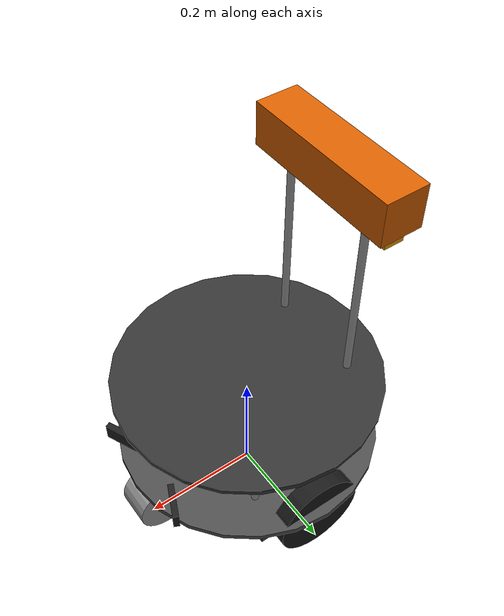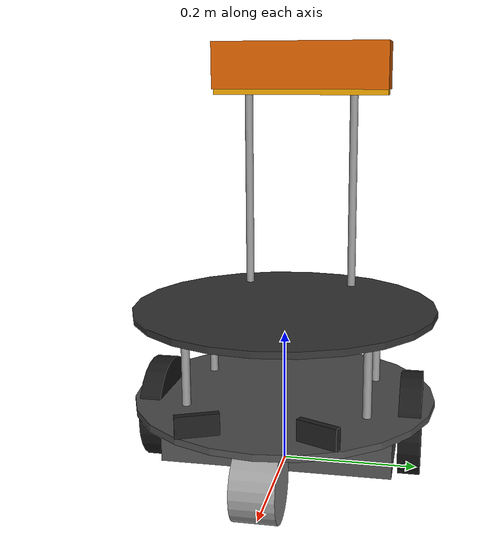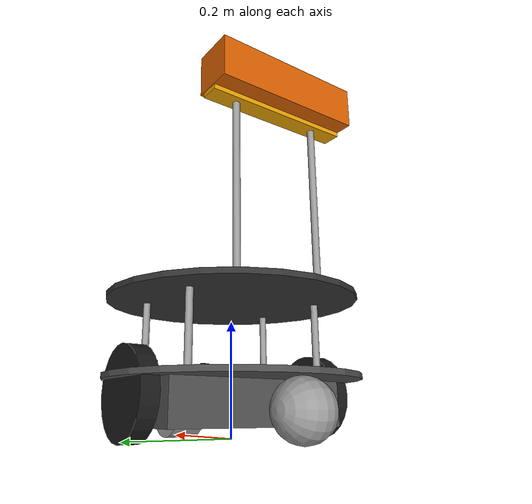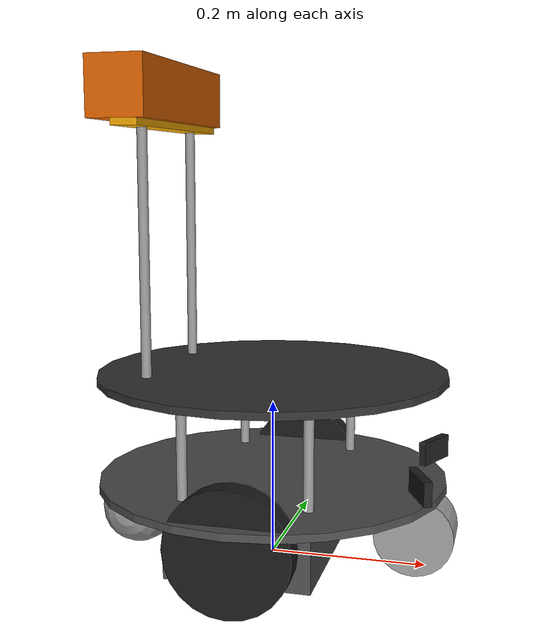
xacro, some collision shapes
<?xml version="1.0"?>
<robot name="eddiebot" xmlns:xacro="http://ros.org/wiki/xacro">

  <xacro:include filename="$(find eddiebot_description)/urdf/stacks/create_base.urdf.xacro"/>
  <xacro:include filename="$(find eddiebot_description)/urdf/stacks/circle_stack.urdf.xacro"/>
  <xacro:include filename="$(find eddiebot_description)/urdf/stacks/camera_stand.urdf.xacro"/>
  <xacro:include filename="$(find eddiebot_description)/urdf/sensors/kinect_v1.urdf.xacro"/>
  <!-- smh   -->
  <xacro:include filename="$(find eddiebot_description)/urdf/sensors/ultrasonic_sensor.urdf.xacro"/>

  <!-- eddiebot -->
  <xacro:create_base/>
  <xacro:circle_stack parent="base_link"/>
  <xacro:camera_stand parent="plate_0_link"/>
  <xacro:sensor_kinect parent="camera_mount_link"/>

</robot>

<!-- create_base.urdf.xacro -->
<robot name="eddiebot_create_base" xmlns:xacro="http://ros.org/wiki/xacro">

  <xacro:include filename="$(find eddiebot_description)/urdf/common.urdf.xacro"/>

  <xacro:include filename="$(find eddiebot_description)/urdf/sensors/ultrasonic_sensor.urdf.xacro"/>

  <!-- Define robot constants -->
  <xacro:property name="base_length" value="0.0095"/>
  <xacro:property name="base_radius" value="0.2245"/>
  <xacro:property name="base_mass" value="2"/>
  <xacro:property name="base_link_z_offset" value="0.10125"/>

  <xacro:property name="battery_box_z_offset" value="-0.04285"/>
  <xacro:property name="battery_box_width" value="0.3366"/>

  <xacro:property name="caster_mass" value="0.5"/>
  <xacro:property name="caster_radius" value="0.05"/>
  <xacro:property name="caster_length" value="0.061"/>
  <xacro:property name="caster_x_offset" value="0.18745"/>
  <xacro:property name="caster_z_offset" value="-0.00475"/>

  <xacro:property name="axle_radius" value="0.00635"/>
  <xacro:property name="axle_length" value="0.00635"/>
  <xacro:property name="axle_y_offset" value="0.171475"/>
  <xacro:property name="axle_z_offset" value="0.014"/>

  <xacro:property name="wheel_mass" value="0.8"/>
  <xacro:property name="wheel_radius" value="0.0762"/>
  <xacro:property name="wheel_width" value="0.03175"/>
  <xacro:property name="wheel_y_offset" value="0.01905"/>

  <xacro:macro name="create_base">

    <!-- base_footprint is a fictitious link(frame) that is on the ground right below base_link origin, navigation stack depends on this frame -->
    <link name="base_footprint">
    </link>
    <joint name="base_footprint_joint" type="fixed">
      <origin xyz="0 0 ${base_link_z_offset}" rpy="0 0 0" />
      <parent link="base_footprint"/>
      <child link="base_link" />
    </joint>

    <link name="base_link">
      <xacro:inertial_cylinder mass="${base_mass}" length="${base_length}" radius="${base_radius}"/>
      <visual>
        <origin xyz="0 0 0" rpy="0 0 0" />
        <geometry>
          <cylinder length="${base_length}" radius="${base_radius}"/>
        </geometry>
        <material name ="material_darkgray" />
      </visual>
      <collision>
        <origin xyz="0 0 0" rpy="0 0 0" />
        <geometry>
          <cylinder length="${base_length}" radius="${base_radius}"/>
        </geometry>
      </collision>
    </link>

    <link name="battery_box">
      <xacro:inertial_cuboid mass="1" x="0.1778" y="${battery_box_width}" z="0.0762"/>
      <visual>
        <origin xyz="0 0 0" rpy="0 0 0" />
        <geometry>
          <box size="0.1778 ${battery_box_width} 0.0762" />
        </geometry>
        <material name ="material_darkgray" />
      </visual>
      <collision>
        <origin xyz="0 0 0" rpy="0 0 0" />
        <geometry>
          <box size="0.1778 ${battery_box_width} 0.0762" />
        </geometry>
      </collision>
    </link>

    <joint name="battery_box_joint" type="fixed">
      <origin xyz="0 0 ${battery_box_z_offset}" rpy="0 0 0" />
      <parent link="base_link" />
      <child link="battery_box" />
    </joint>

    <link name="front_caster">
      <xacro:inertial_cylinder mass="${caster_mass}" length="${caster_length}" radius="${caster_radius}" />
      <visual>
        <origin xyz="0 0 0" rpy="-${M_PI/2} 0 ${M_PI/2}" />
        <geometry>
          <mesh filename="package://eddiebot_description/meshes/28971-Caster-Wheel-Kit-v1.0.stl"/>
        </geometry>
        <material name ="material_lightgray">
          <color rgba="0.6 0.6 0.6 1"/>
        </material>
      </visual>
      <collision>
        <geometry>
          <cylinder length="${caster_length}" radius="${caster_radius}"/>
        </geometry>
        <origin rpy="${M_PI/2} 0 0" xyz="0 0 -${caster_radius}"/>
      </collision>
    </link>
    <gazebo reference="front_caster">
      <mu1 value="0.0"/>
      <mu2 value="0.0"/>
      <kp value="10000000.0"/>
      <kd value="1.0"/>
      <fdir1 value="1 0 0"/>
      <turnGravityOff>false</turnGravityOff>
    </gazebo>

    <joint name="front_caster_joint" type="fixed">
      <origin xyz="${caster_x_offset} 0 ${caster_z_offset}" rpy="0 0 0" />
      <parent link="base_link" />
      <child link="front_caster" />
    </joint>

    <link name="rear_caster">
      <xacro:inertial_cylinder mass="${caster_mass}" length="${caster_length}" radius="${caster_radius}" />
      <visual>
        <origin xyz="0 0 0" rpy="-${M_PI/2} 0 ${M_PI/2}" />
        <geometry>
          <mesh filename="package://eddiebot_description/meshes/28971-Caster-Wheel-Kit-v1.0.stl"/>
        </geometry>
        <material name ="material_lightgray">
          <color rgba="0.6 0.6 0.6 1"/>
        </material>
      </visual>
      <collision>
        <geometry>
          <sphere radius="${caster_radius}"/>
        </geometry>
        <origin rpy="${M_PI/2} 0 0" xyz="0 0 -${caster_radius}"/>
      </collision>
    </link>
    <gazebo reference="rear_caster">
      <mu1 value="0.0"/>
      <mu2 value="0.0"/>
      <kp value="10000000.0"/>
      <kd value="1.0"/>
      <fdir1 value="1 0 0"/>
      <turnGravityOff>false</turnGravityOff>
    </gazebo>

    <joint name="rear_caster_joint" type="fixed">
      <origin xyz="${-caster_x_offset} 0 ${caster_z_offset}" rpy="0 0 0" />
      <parent link="base_link" />
      <child link="rear_caster" />
    </joint>

    <link name="left_axle_link">
      <xacro:inertial_dummy />
      <visual>
        <origin xyz="0 0 0" rpy="0 ${M_PI/2} ${M_PI/2}" />
        <geometry>
          <cylinder radius="${axle_radius}" length = "${axle_length}"/>
        </geometry>
        <material name ="material_lightgray" />
      </visual>
      <collision>
        <origin xyz="0 0 0" rpy="0 ${M_PI/2} ${M_PI/2}" />
        <geometry>
          <cylinder radius="${axle_radius}" length = "${axle_length}"/>
        </geometry>
      </collision>
    </link>

    <joint name="left_axle_joint" type="fixed">
      <origin xyz="0 ${axle_y_offset} ${axle_z_offset}" rpy="0 0 0"/>
      <parent link="battery_box"/>
      <child link="left_axle_link"/>
      <axis xyz="0 1 0"/>
    </joint>

    <link name="right_axle_link">
      <xacro:inertial_dummy />
      <visual>
        <origin xyz="0 0 0" rpy="0 ${M_PI/2} ${M_PI/2}" />
        <geometry>
          <cylinder radius="${axle_radius}" length = "${axle_length}"/>
        </geometry>
        <material name ="material_lightgray" />
      </visual>
      <collision>
        <origin xyz="0 0 0" rpy="0 ${M_PI/2} ${M_PI/2}" />
        <geometry>
          <cylinder radius="${axle_radius}" length = "${axle_length}"/>
        </geometry>
      </collision>
    </link>

    <joint name="right_axle_joint" type="fixed">
      <origin xyz="0 ${-axle_y_offset} ${axle_z_offset}" rpy="0 0 0"/>
      <parent link="battery_box"/>
      <child link="right_axle_link"/>
      <axis xyz="0 1 0"/>
    </joint>

    <link name="left_wheel_link">
      <xacro:inertial_cylinder mass="${wheel_mass}" radius="${wheel_radius}" length="${wheel_width}" />
      <visual>
        <origin xyz="0 0 0" rpy="${M_PI/2} 0 0" />
        <geometry>
          <cylinder radius="${wheel_radius}" length = "${wheel_width}"/>
        </geometry>
        <material name ="material_black" />
      </visual>
      <collision>
        <origin xyz="0 0 0" rpy="${M_PI/2} 0 0" />
        <geometry>
          <cylinder radius="${wheel_radius}" length = "${wheel_width}"/>
        </geometry>
      </collision>
    </link>

    <joint name="left_wheel_joint" type="continuous">
      <origin xyz="0 ${wheel_y_offset} 0" rpy="0 0 0"/>
      <parent link="left_axle_link"/>
      <child link="left_wheel_link"/>
      <axis xyz="0 1 0"/>
    </joint>

    <link name="right_wheel_link">
      <xacro:inertial_cylinder mass="${wheel_mass}" radius="${wheel_radius}" length="${wheel_width}" />
      <visual>
        <origin xyz="0 0 0" rpy="${M_PI/2} 0 0" />
        <geometry>
          <cylinder radius="${wheel_radius}" length = "${wheel_width}"/>
        </geometry>
        <material name ="material_black" />
      </visual>
      <collision>
        <origin xyz="0 0 0" rpy="${M_PI/2} 0 0" />
        <geometry>
          <cylinder radius="${wheel_radius}" length = "${wheel_width}"/>
        </geometry>
      </collision>
    </link>

    <joint name="right_wheel_joint" type="continuous">
      <origin xyz="0 -${wheel_y_offset} 0" rpy="0 0 0"/>
      <parent link="right_axle_link"/>
      <child link="right_wheel_link"/>
      <axis xyz="0 1 0"/>
    </joint>

    <!-- Diff Drive -->
    <gazebo>
      <plugin filename="gz-sim-diff-drive-system" name="gz::sim::systems::DiffDrive">
        <left_joint>left_wheel_joint</left_joint>
        <right_joint>right_wheel_joint</right_joint>
        <wheel_separation>${wheel_y_offset*2 + battery_box_width}</wheel_separation>
        <wheel_radius>${wheel_radius}</wheel_radius>
        <odom_publish_frequency>1</odom_publish_frequency>
        <topic>cmd_vel</topic>
      </plugin>
      <plugin filename="gz-sim-joint-state-publisher-system" name="gz::sim::systems::JointStatePublisher">
        <joint_name>left_wheel_joint</joint_name>
        <joint_name>right_wheel_joint</joint_name>
        <topic>model/eddiebot/joint_states</topic>
      </plugin>
    </gazebo>

    <xacro:ultrasonic_sensor_sim name="ultrasonic_l" parent="base_link" topic="ultrasonic_l" x="0.2" y="0.08" z="0.028" roll="0.000" pitch="0.000" yaw="20" linkname="ultrasonic_link_l" jointname="ultrasonic_joint_l"/>
    <xacro:ultrasonic_sensor_sim name="ultrasonic_r" parent="base_link" topic="ultrasonic_r" x="0.2" y="-0.08" z="0.028" roll="0.000" pitch="0.000" yaw="-20" linkname="ultrasonic_link_r" jointname="ultrasonic_joint_r"/>

  </xacro:macro>

</robot>

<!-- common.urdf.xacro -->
<!-- Various useful macros -->
<robot name="xacro_properties" xmlns:xacro="http://ros.org/wiki/xacro">

  <!-- Constants -->
  <xacro:property name="M_PI" value="3.1415926535897931" />

  <xacro:macro name="inertial_cuboid_with_pose" params="mass x y z *origin">
    <inertial>
      <mass value="${mass}" />
      <xacro:insert_block name="origin"/>
      <inertia ixx="${(1/12) * mass * (y*y + z*z)}" ixy="0.0" ixz="0.0"
        iyy="${(1/12) * mass * (x*x + z*z)}" iyz="0.0"
        izz="${(1/12) * mass * (x*x + y*y)}" />
    </inertial>
  </xacro:macro>

  <xacro:macro name="inertial_cuboid" params="mass x y z">
    <xacro:inertial_cuboid_with_pose mass="${mass}" x="${x}" y="${y}" z="${z}">
      <origin xyz="0 0 0" />
    </xacro:inertial_cuboid_with_pose>
  </xacro:macro>

  <xacro:macro name="inertial_cylinder_with_pose" params="mass radius length *origin">
    <inertial>
      <xacro:insert_block name="origin"/>
      <mass value="${mass}" />
      <inertia ixx="${(1/12) * mass * (3*radius*radius + length*length)}" ixy="0.0" ixz="0.0"
        iyy="${(1/12) * mass * (3*radius*radius + length*length)}" iyz="0.0"
        izz="${(1/2) * mass * (radius*radius)}" />
    </inertial>
  </xacro:macro>

  <xacro:macro name="inertial_cylinder" params="mass radius length">
    <xacro:inertial_cylinder_with_pose mass="${mass}" radius="${radius}" length="${length}">
      <origin xyz="0 0 0" />
    </xacro:inertial_cylinder_with_pose>
  </xacro:macro>

  <xacro:macro name="inertial_sphere" params="mass radius">
    <inertial>
      <mass value="${mass}" />
      <inertia ixx="${(2/5) * mass * radius * radius}" ixy="0.0" ixz="0.0"
	             iyy="${(2/5) * mass * radius * radius}" iyz="0.0"
	             izz="${(2/5) * mass * radius * radius}" />
    </inertial>
  </xacro:macro>

  <xacro:macro name="inertial_dummy">
    <xacro:inertial_cuboid mass="0.001" x="0.001" y="0.001" z="0.001"/>
  </xacro:macro>

  <!-- Conversion macros -->
  <xacro:property name="cm2m"    value="${1/100.0}"/>
  <xacro:property name="mm2m"    value="${1/1000.0}"/>
  <xacro:property name="in2m"    value="0.0254"/>
  <xacro:property name="deg2rad" value="${pi/180.0}"/>

  <!-- Material colors -->
  <material name="material_black">
    <color rgba="0.1 0.1 0.1 1"/>
  </material>

  <material name="material_darkgray">
    <color rgba="0.3 0.3 0.3 1"/>
  </material>

  <material name="sensor_blue">
    <color rgba="0.1 0.2 0.8 1"/>
  </material>

  <material name="material_lightgray">
    <color rgba="0.5 0.5 0.5 1"/>
  </material>

</robot>

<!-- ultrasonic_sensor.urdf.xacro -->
<robot name="ultrasonic_sensor" xmlns:xacro="http://ros.org/wiki/xacro">

    <xacro:property name="length" value="0.06"/>
    <xacro:property name="width" value="0.01" />
    <xacro:property name="height" value="0.03" />

    <xacro:macro name="ultrasonic_sensor_sim" params="name parent topic x y z roll pitch yaw linkname jointname">

         <link name="${linkname}">
            <xacro:inertial_cuboid mass="1" x="${length}" y="${width}" z="${height}"/>
            <visual>
                <origin xyz="0 0 0" rpy="0 0 0" />
                <geometry>
                    <box size="${length} ${width} ${height}" />
                </geometry>
                <material name ="black" />
            </visual>
            <collision>
                <origin xyz="0 0 0" rpy="0 0 0" />
                <geometry>
                    <box size="${length} ${width} ${height}" />
                </geometry>
            </collision>
        </link>

        <joint name="${jointname}" type="fixed">
            <origin xyz="${x} ${y} ${z}" rpy="${roll} ${pitch} ${yaw}" />
            <parent link="${parent}" />
            <child link="${linkname}" />
        </joint>

        <gazebo reference="${linkname}">
            <sensor name="${name}" type="gpu_lidar">
                <always_on>1</always_on>
                <update_rate>5</update_rate>
                <visualize>1</visualize>
                <topic>${topic}</topic>
                <ray>
                    <scan>
                        <horizontal>
                            <samples>640</samples>
                            <resolution>1</resolution>
                            <min_angle>-1.396263</min_angle>
                            <max_angle>1.396263</max_angle>
                        </horizontal>
                    </scan>
                    <range>
                        <min>0.08</min>
                        <max>4</max>
                        <resolution>0.02</resolution>
                    </range>
                    <noise>
                        <type>gaussian</type>
                        <mean>0.1</mean>
                        <stddev>0.005</stddev>
                    </noise>
                </ray>
            </sensor>
        </gazebo>
    </xacro:macro>
</robot>

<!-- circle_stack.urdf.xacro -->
<robot name="eddiebot_hardware" xmlns:xacro="http://ros.org/wiki/xacro">

  <!-- Macro for creating eddiebot circle stack. -->
  <xacro:macro name="eddiebot_standoff_5in" params="parent number x_loc y_loc z_loc">
    <joint name="standoff_5in_${number}_joint" type="fixed">
      <origin xyz="${x_loc} ${y_loc} ${z_loc}" rpy="0 0 0" />
      <parent link="${parent}"/>
      <child link="standoff_5in_${number}_link" />
    </joint>

    <link name="standoff_5in_${number}_link">
      <inertial>
        <mass value="0.001" />
        <origin xyz="0 0 0" />
        <inertia ixx="0.0001" ixy="0.0" ixz="0.0"
          iyy="0.0001" iyz="0.0"
          izz="0.0001" />
      </inertial>

      <visual>
        <origin xyz=" 0 0 0 " rpy="0 0 0" />
        <geometry>
          <cylinder length="0.127" radius="0.00635"/>
        </geometry>
        <material name ="light_grey">
          <color rgba="0.6 0.6 0.6 1"/>
        </material>
      </visual>

      <collision>
        <origin xyz="0.0 0.0 0.0" rpy="0 0 0" />
        <geometry>
          <cylinder length="0.127" radius="0.00635"/>
        </geometry>
      </collision>
    </link>
  </xacro:macro>

  <xacro:macro name="circle_stack" params="parent">
    <joint name="plate_0_joint" type="fixed">
      <origin xyz="0 0 0.1365" rpy="0 0 0" />
      <parent link="${parent}"/>
      <child link="plate_0_link" />
    </joint>

    <link name="plate_0_link">
      <inertial>
        <mass value="0.01" />
        <origin xyz="0 0 0" />
        <inertia ixx="0.01" ixy="0.0" ixz="0.0"
          iyy="0.01" iyz="0.0"
          izz="0.01" />
      </inertial>

      <visual>
        <origin xyz=" 0 0 0 " rpy="0 0 0" />
        <geometry>
          <cylinder length="0.0095" radius="0.2245"/>
        </geometry>
        <material name ="veryDarkGrey">
          <color rgba=".2 .2 .2 1"/>
        </material>
      </visual>

      <collision>
        <origin xyz="0.0 0.0 0.0" rpy="0 0 0" />
        <geometry>
          <cylinder length="0.0095" radius="0.2245"/>
        </geometry>
      </collision>
    </link>

    <xacro:eddiebot_standoff_5in parent="${parent}" number="0" x_loc="0.0776402" y_loc="0.1314196" z_loc="0.06825"/>
    <xacro:eddiebot_standoff_5in parent="${parent}" number="1" x_loc="0.0776402" y_loc="-0.1314196" z_loc="0.06825"/>
    <xacro:eddiebot_standoff_5in parent="${parent}" number="2" x_loc="-0.0776402" y_loc="-0.1314196" z_loc="0.06825"/>
    <xacro:eddiebot_standoff_5in parent="${parent}" number="3" x_loc="-0.0776402" y_loc="0.1314196" z_loc="0.06825"/>
  </xacro:macro>

</robot>

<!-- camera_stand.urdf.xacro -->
<robot name="eddiebot_kinect_stand" xmlns:xacro="http://ros.org/wiki/xacro">

  <!-- Macro for creating eddiebot camera stand. -->

  <!-- Actually, the standoff is 30.48cm (12 inch)-->
  <xacro:macro name="eddiebot_standoff_30cm" params="parent number x_loc y_loc z_loc">
    <joint name="standoff_30cm_${number}_joint" type="fixed">
      <origin xyz="${x_loc} ${y_loc} ${z_loc}" rpy="0 0 0" />
      <parent link="${parent}"/>
      <child link="standoff_30cm_${number}_link" />
    </joint>

    <link name="standoff_30cm_${number}_link">
      <inertial>
        <mass value="0.001" />
        <origin xyz="0 0 0" />
        <inertia ixx="0.0001" ixy="0.0" ixz="0.0"
          iyy="0.0001" iyz="0.0"
          izz="0.0001" />
      </inertial>

      <visual>
        <origin xyz=" 0 0 0 " rpy="0 0 0" />
        <geometry>
          <cylinder length="0.3048" radius="0.00635"/>
        </geometry>
        <material name ="light_grey">
          <color rgba="0.6 0.6 0.6 1"/>
        </material>
      </visual>

      <collision>
        <origin xyz="0.0 0.0 0.0" rpy="0 0 0" />
        <geometry>
          <cylinder length="0.3048" radius="0.00635"/>
        </geometry>
      </collision>
    </link>
  </xacro:macro>

  <xacro:macro name="camera_stand" params="parent">
    <!-- Camera mount -->
    <joint name="camera_mount_joint" type="fixed">
      <origin xyz="-0.140 0.0 0.31555" rpy="0 0 0"/>
      <parent link="${parent}"/>
      <child link="camera_mount_link"/>
    </joint>

    <link name="camera_mount_link">
      <visual>
        <origin xyz="0 0 0" rpy="${-M_PI/2} 0 0"/>
        <geometry>
          <mesh filename="package://eddiebot_description/meshes/sensors/xtion_pro_stack.dae"/>
        </geometry>
      </visual>

      <collision>
        <origin xyz="0.0 0.0 0.0" rpy="0 0 0" />
        <geometry>
          <box size="0.0330 0.2760 0.0120"/>
        </geometry>
      </collision>

      <inertial>
        <mass value="0.170" />
        <origin xyz="0 0 0" />
        <inertia ixx="0.001152600" ixy="0.0" ixz="0.0"
                 iyy="0.000148934" iyz="0.0"
                 izz="0.001154654" />
        </inertial>
    </link>

    <xacro:eddiebot_standoff_30cm parent="${parent}" number="0" x_loc="-0.140" y_loc="-0.084" z_loc="0.15715"/>
    <xacro:eddiebot_standoff_30cm parent="${parent}" number="1" x_loc="-0.140" y_loc="0.084" z_loc="0.15715"/>
  </xacro:macro>

</robot>

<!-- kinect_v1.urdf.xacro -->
<robot name="sensor_kinect" xmlns:xacro="http://ros.org/wiki/xacro">
  <xacro:include filename="$(find eddiebot_description)/urdf/sensors/rgbd_sensor.urdf.xacro"/>
  <xacro:include filename="$(find eddiebot_description)/urdf/camera_properties.urdf.xacro"/>

  <xacro:property name="kinect_cam_py" value="-0.0125"/>
  <xacro:property name="kinect_cam_pz" value="0.055" />

  <xacro:macro name="sensor_kinect" params="parent">
    <joint name="camera_rgb_joint" type="fixed">
      <origin xyz="${cam_px} ${kinect_cam_py} ${kinect_cam_pz}" rpy="${cam_or} ${cam_op} ${cam_oy}"/>
      <parent link="${parent}"/>
      <child link="camera_rgb_frame" />
    </joint>

    <link name="camera_rgb_frame"/>

    <joint name="camera_rgb_optical_joint" type="fixed">
      <origin xyz="0 0 0" rpy="${-M_PI/2} 0 ${-M_PI/2}" />
      <parent link="camera_rgb_frame" />
      <child link="camera_rgb_optical_frame" />
    </joint>

    <link name="camera_rgb_optical_frame"/>

    <joint name="camera_joint" type="fixed">
      <origin xyz="-0.031 ${-kinect_cam_py} -0.016" rpy="0 0 0"/>
      <parent link="camera_rgb_frame"/>
      <child link="camera_link"/>
    </joint>

    <link name="camera_link">
      <visual>
       <origin xyz="0 0 0" rpy="0 0 ${M_PI/2}"/>
        <geometry>
         <mesh filename="package://eddiebot_description/meshes/sensors/kinect.dae"/>
        </geometry>
      </visual>
  	  <collision>
        <origin xyz="0.0 0.0 0.0" rpy="0 0 0"/>
  	    <geometry>
  	      <box size="0.07271 0.27794 0.073"/>
  	    </geometry>
  	  </collision>
      <inertial>
        <mass value="0.564" />
        <origin xyz="0 0 0" />
        <inertia ixx="0.003881243" ixy="0.0" ixz="0.0"
                 iyy="0.000498940" iyz="0.0"
                 izz="0.003879257" />
      </inertial>
    </link>

	<joint name="camera_depth_joint" type="fixed">
	  <origin xyz="0 ${2 * -kinect_cam_py} 0" rpy="0 0 0" />
	  <parent link="camera_rgb_frame" />
	  <child link="camera_depth_frame" />
	</joint>
	<link name="camera_depth_frame"/>

	<joint name="camera_depth_optical_joint" type="fixed">
	  <origin xyz="0 0 0" rpy="${-M_PI/2} 0 ${-M_PI/2}" />
	  <parent link="camera_depth_frame" />
	  <child link="camera_depth_optical_frame" />
	</joint>
	<link name="camera_depth_optical_frame"/>

	<!-- Kinect sensor for simulation -->
	<xacro:rgbd_sensor_sim/>
  </xacro:macro>
</robot>

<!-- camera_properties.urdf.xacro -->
<robot xmlns:xacro="http://www.ros.org/wiki/xacro">
  <!--
      These properties must be observed by any machine
      that wants to be defined as a turtlebot. Refer
      to the REP for more details.

      http://www.ros.org/reps/rep-0119.html
  -->

   <!-- This is how far forward or backward on the robot the camera is set. -->
       <!-- Test this by setting the robot's axles exactly 1 meter from a wall, start up RVIZ with the robot at 0,0,0 on the grid, -->
       <!-- and see if the wall lines up with the first 1 meter grid line from the robot. -->
    <xacro:property name="cam_px" value="0.02" />

    <!-- This is the height of the camera. It isn't as essential as most settings, because we are using a "2D" map. -->
    <!-- However, setting it accurately can help with some use cases. -->
    <xacro:property name="cam_pz" value="0.025" />

    <!-- This is the tilt across the horizontal when looking straight at the camera. Probably important, but hard to see if it is.
    -->
    <xacro:property name="cam_or" value="0" />
    <!-- This is the tilt causing the camera to look "up" or "down". -->
    <xacro:property name="cam_op" value="0" />
    <!-- This is the rotation of the camera -->
    <!-- Test this by setting the robot's axles exactly 1 meter from a wall, start up RVIZ with the robot at 0,0,0 on the grid, -->
    <!-- and see if the wall lines up straight with the grid line. -->
    <xacro:property name="cam_oy" value="0" />
</robot>
